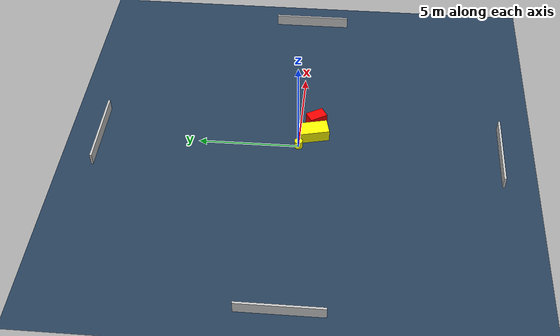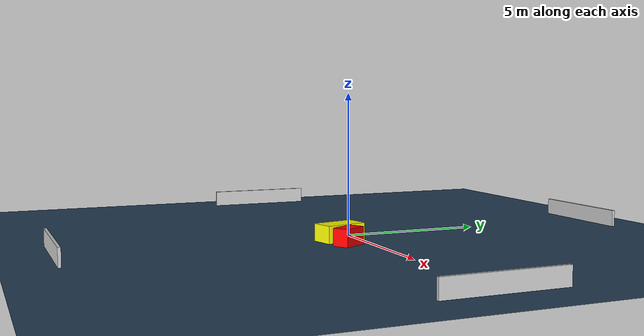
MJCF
<?xml version="1.0" ?>
<mujoco model="generated_environment">
  <option timestep="0.01" integrator="RK4" cone="elliptic"/>
  <default>
    <geom density="1"/>
  </default>
  <asset>
    <texture builtin="gradient" height="3072" name="skybox" rgb1="0.3 0.5 0.7" rgb2="0 0 0" type="skybox" width="512"/>
    <texture builtin="checker" height="300" name="groundplane" rgb1="0.2 0.3 0.4" rgb2="0.1 0.2 0.3" type="2d" width="300"/>
    <material name="groundplane" reflectance="0.2" texrepeat="5 5" texture="groundplane"/>
  </asset>
  <worldbody>
    <light dir="0 0 -1" directional="true" pos="0 0 1.5"/>
    <geom condim="3" friction="0.5 0.005 0.001" material="groundplane" name="floor" pos="0 0 0" size="0 0 0.05" type="plane"/>
    <body name="walls">
      <geom name="wall_1" condim="4" pos="-10.0 0.0 0.3" rgba="0.800000011920929 0.800000011920929 0.800000011920929 1.0" size="0.05 2.0 0.3" type="box"/>
      <geom name="wall_2" condim="4" pos="10.0 0.0 0.3" rgba="0.800000011920929 0.800000011920929 0.800000011920929 1.0" size="0.05 2.0 0.3" type="box"/>
      <geom name="wall_3" condim="4" pos="0.0 -10.0 0.3" rgba="0.800000011920929 0.800000011920929 0.800000011920929 1.0" size="2.0 0.05 0.3" type="box"/>
      <geom name="wall_4" condim="4" pos="0.0 10.0 0.3" rgba="0.800000011920929 0.800000011920929 0.800000011920929 1.0" size="2.0 0.05 0.3" type="box"/>
    </body>
    <body name="robot">
      <joint name="joint_x" type="slide" pos="0 0 0" axis="1 0 0"/>
      <joint name="joint_y" type="slide" pos="0 0 0" axis="0 1 0"/>
      <geom name="robot" type="cylinder" pos="0.0 0.0 0.2" size="0.2 0.2 0.0" mass="5.0" friction="1.0 0.005 0.0001" condim="4" rgba="1.0 1.0 0.0 1.0"/>
    </body>
    <body name="obstacle_1_movable">
      <geom name="obstacle_1_movable" condim="4" pos="0.8129105867338955 -0.6746978711665576 0.3" euler="0 0 283.1622581954557" friction="0.0 0.005 0.001" rgba="1.0 1.0 0.0 1.0" size="0.7535284448103992 0.4195666230512487 0.3" type="box" mass="0.1"/>
      <joint type="free"/>
    </body>
    <body name="obstacle_2_static">
      <geom name="obstacle_2_static" condim="4" pos="1.7980004474245805 -0.7771766227437414 0.3" euler="0 0 300.6319355845754" friction="0.0 0.005 0.001" rgba="1.0 0.0 0.0 1.0" size="0.4602192001912378 0.2950140655249372 0.3" type="box"/>
    </body>
  </worldbody>
  <actuator>
    <motor name="actuator_x" joint="joint_x" gear="1" ctrlrange="-1 1"/>
    <motor name="actuator_y" joint="joint_y" gear="1" ctrlrange="-1 1"/>
  </actuator>
</mujoco>
